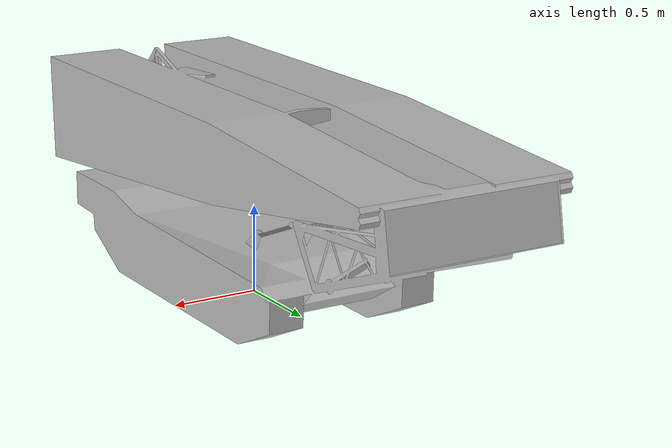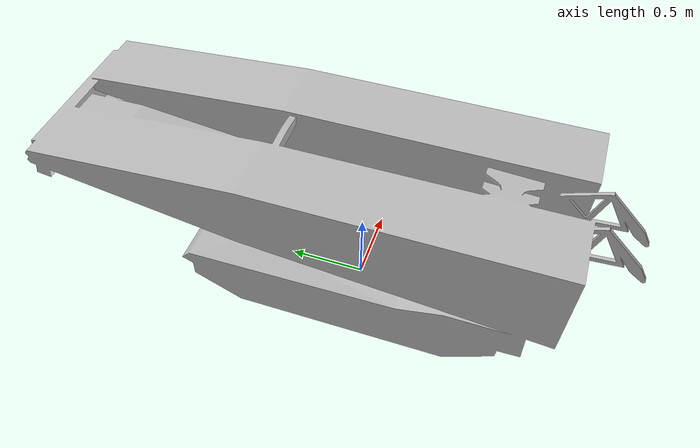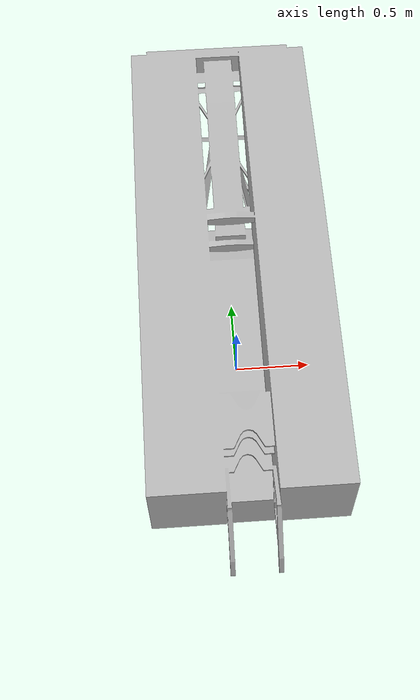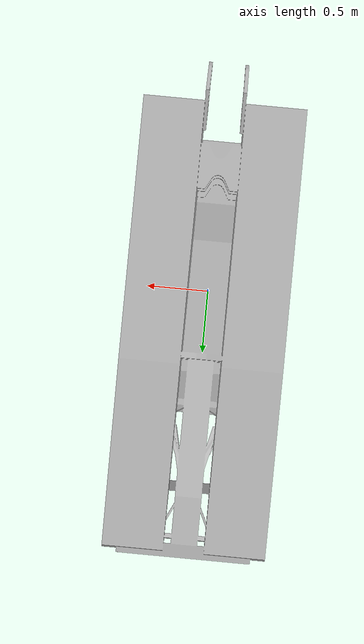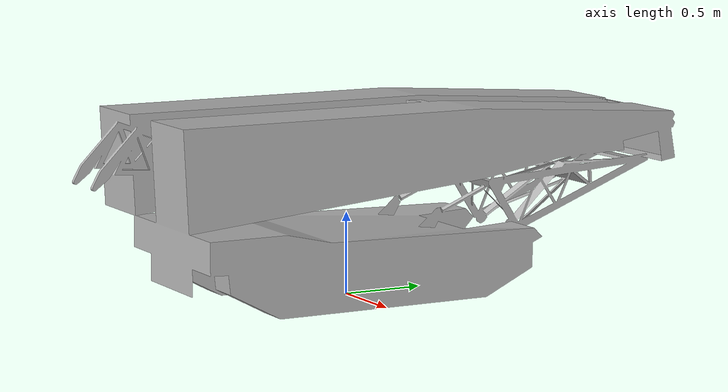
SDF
<?xml version="1.0" ?>
<sdf version="1.6">
  <model name="k1avlb">

    <static>true</static>

    <link name="link">

      <inertial>
	<pose>0 0 0 0 0 0</pose>
        <mass>100.0</mass>
        <inertia>
          <ixx>1</ixx>
          <ixy>0</ixy>
          <ixz>0</ixz>
          <iyy>1</iyy>
          <iyz>0</iyz>
          <izz>1</izz>
        </inertia>
      </inertial>

      <collision name="collision">
        <geometry>
          <mesh>
            <scale> 0.3 0.3 0.3</scale>
            <uri>model://k1avlb/meshes/k1avlb.obj</uri>
          </mesh>
        </geometry>
	<surface>
          <contact>
            <ode>
              <max_vel>0.1</max_vel>
              <min_depth>0.001</min_depth>
            </ode>
          </contact>
        </surface>
      </collision>

      <visual name="visual">
	<pose>0 0 0 1.5708 0 0</pose>
        <geometry>
          <mesh>
            <scale>0.3 0.3 0.3</scale>
            <uri>model://k1avlb/meshes/k1avlb.obj</uri>
          </mesh>
        </geometry>
      </visual>
    </link>
  </model>
</sdf>
